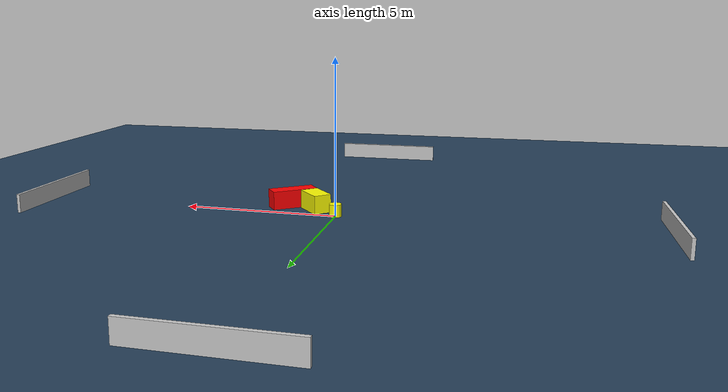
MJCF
<?xml version="1.0" ?>
<mujoco model="generated_environment">
  <option timestep="0.01" integrator="RK4" cone="elliptic"/>
  <default>
    <geom density="1"/>
  </default>
  <asset>
    <texture builtin="gradient" height="3072" name="skybox" rgb1="0.3 0.5 0.7" rgb2="0 0 0" type="skybox" width="512"/>
    <texture builtin="checker" height="300" name="groundplane" rgb1="0.2 0.3 0.4" rgb2="0.1 0.2 0.3" type="2d" width="300"/>
    <material name="groundplane" reflectance="0.2" texrepeat="5 5" texture="groundplane"/>
  </asset>
  <worldbody>
    <light dir="0 0 -1" directional="true" pos="0 0 1.5"/>
    <geom condim="3" friction="0.5 0.005 0.001" material="groundplane" name="floor" pos="0 0 0" size="0 0 0.05" type="plane"/>
    <body name="walls">
      <geom name="wall_1" condim="4" pos="-10.0 0.0 0.3" rgba="0.800000011920929 0.800000011920929 0.800000011920929 1.0" size="0.05 2.0 0.3" type="box"/>
      <geom name="wall_2" condim="4" pos="10.0 0.0 0.3" rgba="0.800000011920929 0.800000011920929 0.800000011920929 1.0" size="0.05 2.0 0.3" type="box"/>
      <geom name="wall_3" condim="4" pos="0.0 -10.0 0.3" rgba="0.800000011920929 0.800000011920929 0.800000011920929 1.0" size="2.0 0.05 0.3" type="box"/>
      <geom name="wall_4" condim="4" pos="0.0 10.0 0.3" rgba="0.800000011920929 0.800000011920929 0.800000011920929 1.0" size="2.0 0.05 0.3" type="box"/>
    </body>
    <body name="robot">
      <joint name="joint_x" type="slide" pos="0 0 0" axis="1 0 0"/>
      <joint name="joint_y" type="slide" pos="0 0 0" axis="0 1 0"/>
      <geom name="robot" type="cylinder" pos="0.0 0.0 0.2" size="0.2 0.2 0.0" mass="5.0" friction="1.0 0.005 0.0001" condim="4" rgba="1.0 1.0 0.0 1.0"/>
    </body>
    <body name="obstacle_1_movable">
      <geom name="obstacle_1_movable" condim="4" pos="0.7941762980400656 -0.5875142357073525 0.3" euler="0 0 221.62249567409611" friction="0.0 0.005 0.001" rgba="1.0 1.0 0.0 1.0" size="0.29575098104997466 0.4942224476276268 0.3" type="box" mass="0.1"/>
      <joint type="free"/>
    </body>
    <body name="obstacle_2_static">
      <geom name="obstacle_2_static" condim="4" pos="1.668973133880754 -0.9141981543854653 0.3" euler="0 0 306.78189171802364" friction="0.0 0.005 0.001" rgba="1.0 0.0 0.0 1.0" size="0.26598879602105946 0.7588184078570861 0.3" type="box"/>
    </body>
  </worldbody>
  <actuator>
    <motor name="actuator_x" joint="joint_x" gear="1" ctrlrange="-1 1"/>
    <motor name="actuator_y" joint="joint_y" gear="1" ctrlrange="-1 1"/>
  </actuator>
</mujoco>
